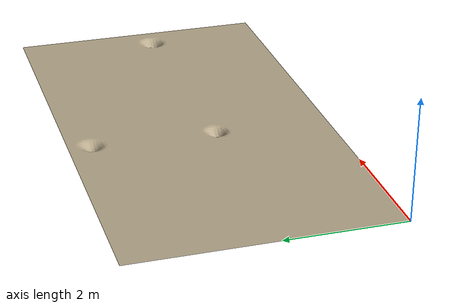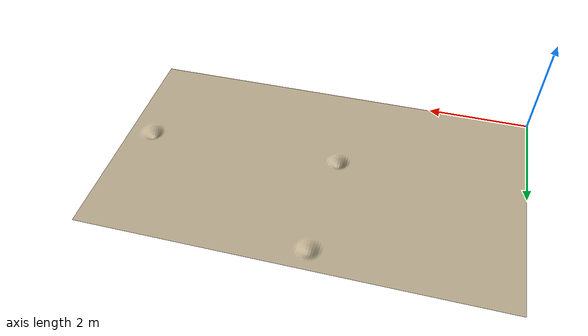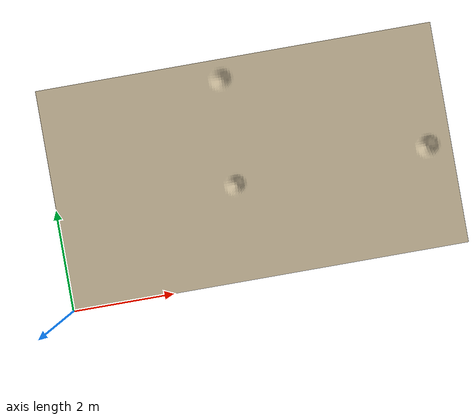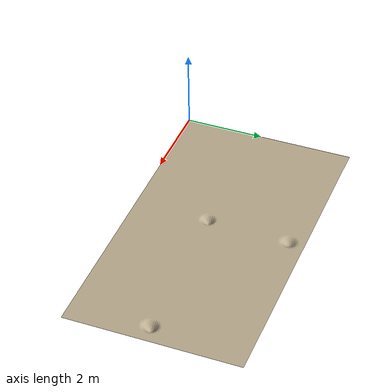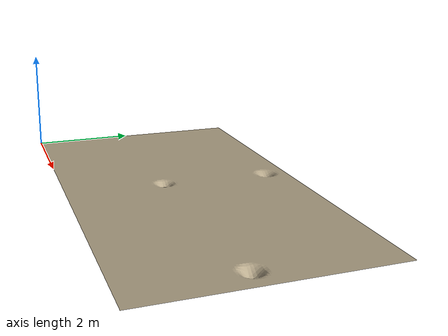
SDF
<?xml version="1.0"?>
<sdf version="1.9">
  <model name="moon_yard_terrain">
    <static>true</static>
    <link name="link">
      <collision name="collision">
        <geometry>
          <mesh>
            <uri>model://moon_yard_terrain/meshes/terrain.obj</uri>
          </mesh>
        </geometry>
        <surface>
          <friction>
            <ode>
              <mu>0.9</mu>
              <mu2>0.9</mu2>
            </ode>
          </friction>
        </surface>
      </collision>
      <visual name="visual">
        <geometry>
          <mesh>
            <uri>model://moon_yard_terrain/meshes/terrain.obj</uri>
          </mesh>
        </geometry>
        <material>
          <ambient>0.76 0.70 0.58 1</ambient>
          <diffuse>0.76 0.70 0.58 1</diffuse>
          <specular>0 0 0 1</specular>
        </material>
      </visual>
    </link>
  </model>
</sdf>
